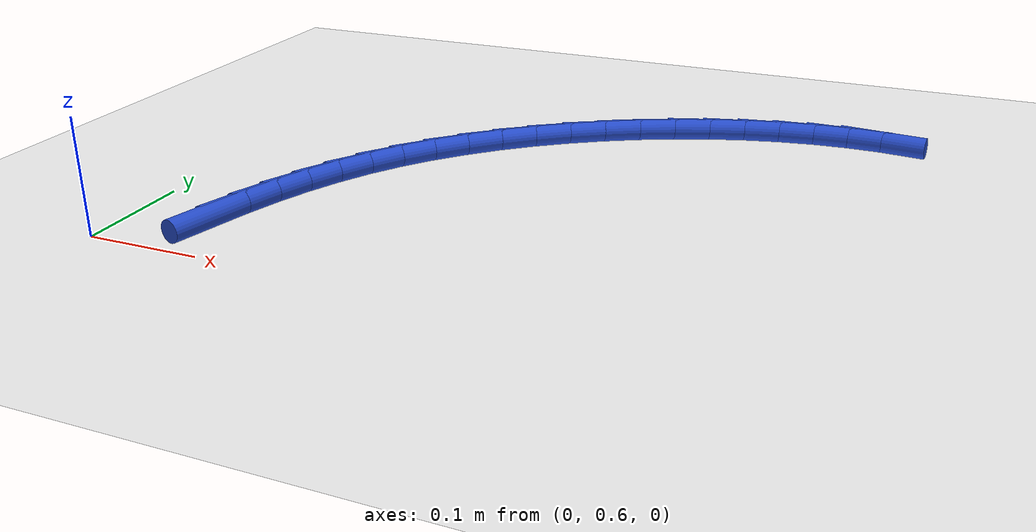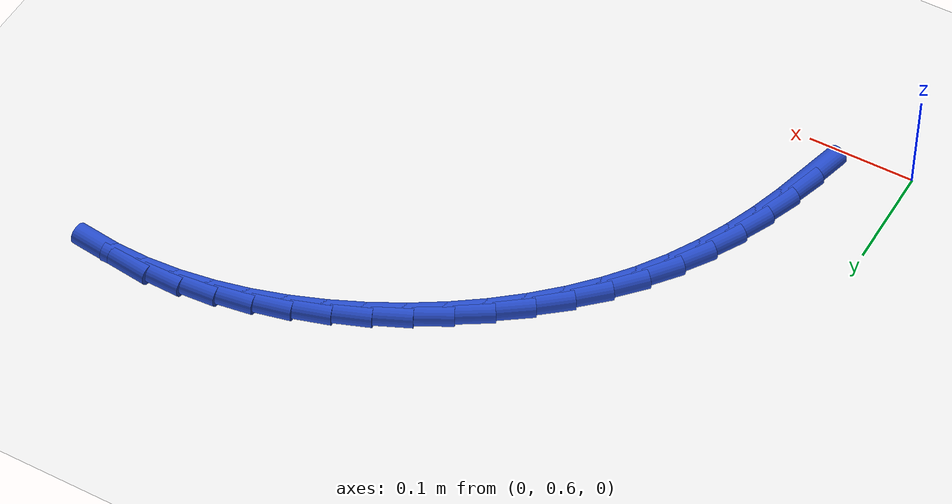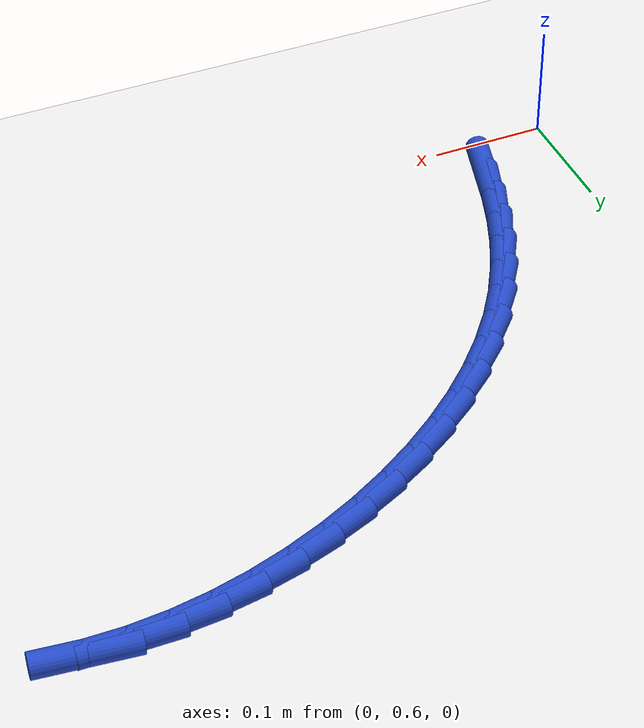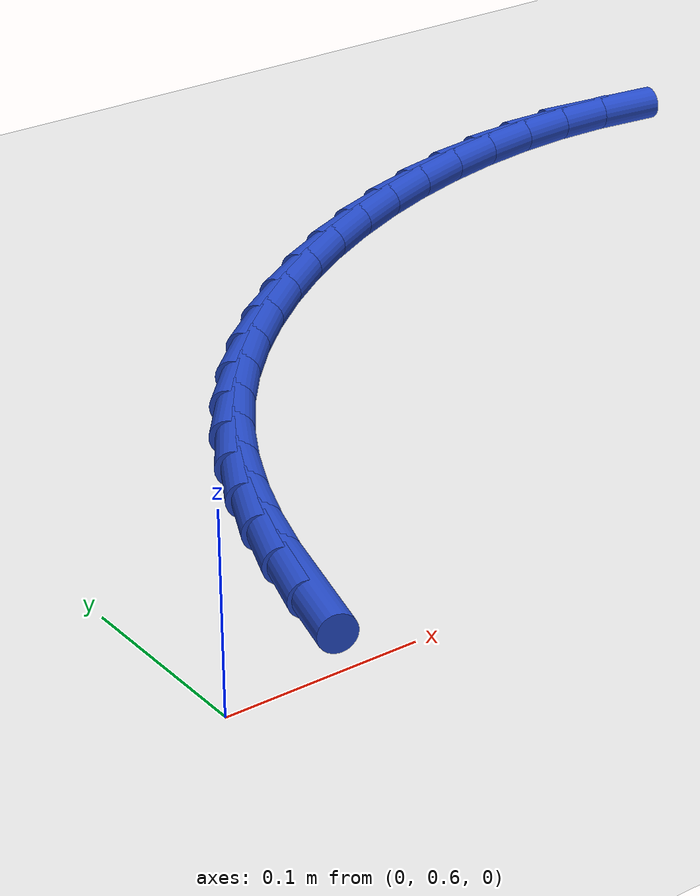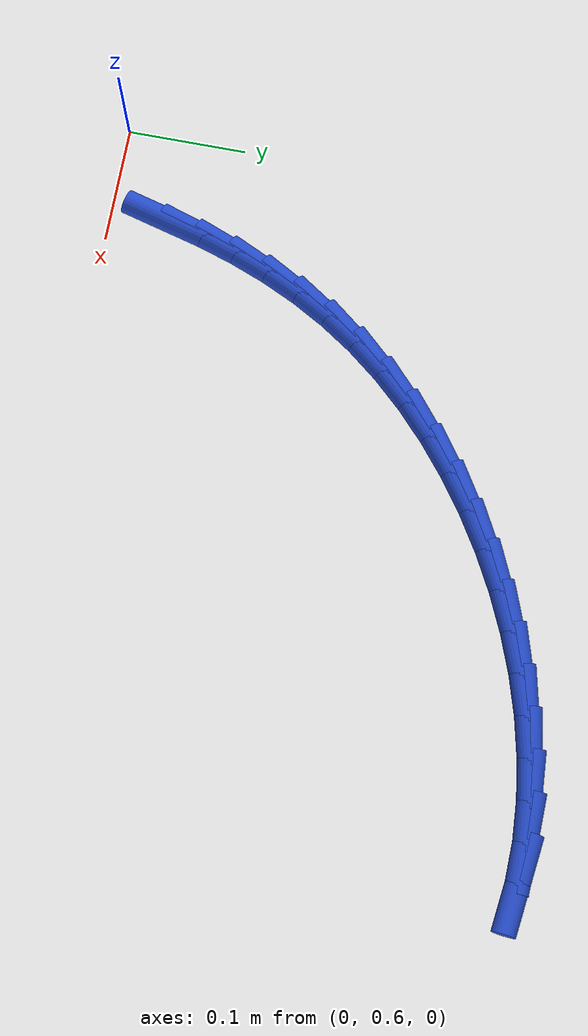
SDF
<sdf version="1.6">
 <world name="default">
  <model name="ground_plane">
   <static>1</static>
   <link name="link">
    <collision name="collision">
     <geometry><plane><normal>0 0 1</normal><size>100 100</size></plane></geometry>
     <surface><friction><ode><mu>100</mu><mu2>50</mu2></ode></friction></surface>
    </collision>
    <visual name="visual">
     <cast_shadows>0</cast_shadows>
     <geometry><plane><normal>0 0 1</normal><size>100 100</size></plane></geometry>
     <material>
      <script><uri>file://media/materials/scripts/gazebo.material</uri><name>Gazebo/WhiteGlow</name></script>
     </material>
    </visual>
   </link>
  </model>
  <model name="line">
   <link name="link_20">
    <pose>0.0774486583179196 0.6512273715249736 0.01 0 1.57 1.3091711000157784</pose>
    <collision name="collision">
     <geometry><cylinder><radius>0.01</radius><length>0.08</length></cylinder></geometry>
    </collision>
    <visual name="visual">
     <material>
      <script><name>Gazebo/Blue</name><uri>file://media/materials/scripts/gazebo.material</uri></script>
     </material>
     <geometry><cylinder><radius>0.01</radius><length>0.08</length></cylinder></geometry>
    </visual>
   </link>
   <link name="link_21">
    <pose>0.08573327645082796 0.682167540598323 0.01 0 1.57 1.255984119481212</pose>
    <collision name="collision">
     <geometry><cylinder><radius>0.01</radius><length>0.08</length></cylinder></geometry>
    </collision>
    <visual name="visual">
     <material>
      <script><name>Gazebo/Blue</name><uri>file://media/materials/scripts/gazebo.material</uri></script>
     </material>
     <geometry><cylinder><radius>0.01</radius><length>0.08</length></cylinder></geometry>
    </visual>
   </link>
   <link name="link_22">
    <pose>0.09558870302588487 0.7124321714394595 0.01 0 1.57 1.1959731708138204</pose>
    <collision name="collision">
     <geometry><cylinder><radius>0.01</radius><length>0.08</length></cylinder></geometry>
    </collision>
    <visual name="visual">
     <material>
      <script><name>Gazebo/Blue</name><uri>file://media/materials/scripts/gazebo.material</uri></script>
     </material>
     <geometry><cylinder><radius>0.01</radius><length>0.08</length></cylinder></geometry>
    </visual>
   </link>
   <link name="link_23">
    <pose>0.10719850851861909 0.7419419479513438 0.01 0 1.57 1.1294316204945463</pose>
    <collision name="collision">
     <geometry><cylinder><radius>0.01</radius><length>0.08</length></cylinder></geometry>
    </collision>
    <visual name="visual">
     <material>
      <script><name>Gazebo/Blue</name><uri>file://media/materials/scripts/gazebo.material</uri></script>
     </material>
     <geometry><cylinder><radius>0.01</radius><length>0.08</length></cylinder></geometry>
    </visual>
   </link>
   <link name="link_24">
    <pose>0.1207462634045594 0.7706175540369357 0.01 0 1.57 1.0569555777172843</pose>
    <collision name="collision">
     <geometry><cylinder><radius>0.01</radius><length>0.08</length></cylinder></geometry>
    </collision>
    <visual name="visual">
     <material>
      <script><name>Gazebo/Blue</name><uri>file://media/materials/scripts/gazebo.material</uri></script>
     </material>
     <geometry><cylinder><radius>0.01</radius><length>0.08</length></cylinder></geometry>
    </visual>
   </link>
   <link name="link_25">
    <pose>0.1364155381592344 0.7983796735991951 0.01 0 1.57 0.979486730409254</pose>
    <collision name="collision">
     <geometry><cylinder><radius>0.01</radius><length>0.08</length></cylinder></geometry>
    </collision>
    <visual name="visual">
     <material>
      <script><name>Gazebo/Blue</name><uri>file://media/materials/scripts/gazebo.material</uri></script>
     </material>
     <geometry><cylinder><radius>0.01</radius><length>0.08</length></cylinder></geometry>
    </visual>
   </link>
   <link name="link_26">
    <pose>0.15438990325817295 0.8251489905410829 0.01 0 1.57 0.8994100275130474</pose>
    <collision name="collision">
     <geometry><cylinder><radius>0.01</radius><length>0.08</length></cylinder></geometry>
    </collision>
    <visual name="visual">
     <material>
      <script><name>Gazebo/Blue</name><uri>file://media/materials/scripts/gazebo.material</uri></script>
     </material>
     <geometry><cylinder><radius>0.01</radius><length>0.08</length></cylinder></geometry>
    </visual>
   </link>
   <link name="link_27">
    <pose>0.17480095725403763 0.8508390065336188 0.01 0 1.57 0.823158644717444</pose>
    <collision name="collision">
     <geometry><cylinder><radius>0.01</radius><length>0.08</length></cylinder></geometry>
    </collision>
    <visual name="visual">
     <material>
      <script><name>Gazebo/Blue</name><uri>file://media/materials/scripts/gazebo.material</uri></script>
     </material>
     <geometry><cylinder><radius>0.01</radius><length>0.08</length></cylinder></geometry>
    </visual>
   </link>
   <link name="link_28">
    <pose>0.19750428889256885 0.8753250802209427 0.01 0 1.57 0.751697193000518</pose>
    <collision name="collision">
     <geometry><cylinder><radius>0.01</radius><length>0.08</length></cylinder></geometry>
    </collision>
    <visual name="visual">
     <material>
      <script><name>Gazebo/Blue</name><uri>file://media/materials/scripts/gazebo.material</uri></script>
     </material>
     <geometry><cylinder><radius>0.01</radius><length>0.08</length></cylinder></geometry>
    </visual>
   </link>
   <link name="link_29">
    <pose>0.2222642155685694 0.8984699570519189 0.01 0 1.57 0.683890236731315</pose>
    <collision name="collision">
     <geometry><cylinder><radius>0.01</radius><length>0.08</length></cylinder></geometry>
    </collision>
    <visual name="visual">
     <material>
      <script><name>Gazebo/Blue</name><uri>file://media/materials/scripts/gazebo.material</uri></script>
     </material>
     <geometry><cylinder><radius>0.01</radius><length>0.08</length></cylinder></geometry>
    </visual>
   </link>
   <link name="link_30">
    <pose>0.24884499663010615 0.9201363744536752 0.01 0 1.57 0.6186537151266341</pose>
    <collision name="collision">
     <geometry><cylinder><radius>0.01</radius><length>0.08</length></cylinder></geometry>
    </collision>
    <visual name="visual">
     <material>
      <script><name>Gazebo/Blue</name><uri>file://media/materials/scripts/gazebo.material</uri></script>
     </material>
     <geometry><cylinder><radius>0.01</radius><length>0.08</length></cylinder></geometry>
    </visual>
   </link>
   <link name="link_31">
    <pose>0.2770108914252454 0.9401870698533387 0.01 0 1.57 0.5549527693007458</pose>
    <collision name="collision">
     <geometry><cylinder><radius>0.01</radius><length>0.08</length></cylinder></geometry>
    </collision>
    <visual name="visual">
     <material>
      <script><name>Gazebo/Blue</name><uri>file://media/materials/scripts/gazebo.material</uri></script>
     </material>
     <geometry><cylinder><radius>0.01</radius><length>0.08</length></cylinder></geometry>
    </visual>
   </link>
   <link name="link_32">
    <pose>0.3065261593020542 0.9584847806780372 0.01 0 1.57 0.4917869587413772</pose>
    <collision name="collision">
     <geometry><cylinder><radius>0.01</radius><length>0.08</length></cylinder></geometry>
    </collision>
    <visual name="visual">
     <material>
      <script><name>Gazebo/Blue</name><uri>file://media/materials/scripts/gazebo.material</uri></script>
     </material>
     <geometry><cylinder><radius>0.01</radius><length>0.08</length></cylinder></geometry>
    </visual>
   </link>
   <link name="link_33">
    <pose>0.3371550596085989 0.9748922443548979 0.01 0 1.57 0.42817007842313104</pose>
    <collision name="collision">
     <geometry><cylinder><radius>0.01</radius><length>0.08</length></cylinder></geometry>
    </collision>
    <visual name="visual">
     <material>
      <script><name>Gazebo/Blue</name><uri>file://media/materials/scripts/gazebo.material</uri></script>
     </material>
     <geometry><cylinder><radius>0.01</radius><length>0.08</length></cylinder></geometry>
    </visual>
   </link>
   <link name="link_34">
    <pose>0.36866185169294596 0.9892721983110478 0.01 0 1.57 0.36310850138713446</pose>
    <collision name="collision">
     <geometry><cylinder><radius>0.01</radius><length>0.08</length></cylinder></geometry>
    </collision>
    <visual name="visual">
     <material>
      <script><name>Gazebo/Blue</name><uri>file://media/materials/scripts/gazebo.material</uri></script>
     </material>
     <geometry><cylinder><radius>0.01</radius><length>0.08</length></cylinder></geometry>
    </visual>
   </link>
   <link name="link_35">
    <pose>0.40081079490316235 1.0014873799736148 0.01 0 1.57 0.29558127397241796</pose>
    <collision name="collision">
     <geometry><cylinder><radius>0.01</radius><length>0.08</length></cylinder></geometry>
    </collision>
    <visual name="visual">
     <material>
      <script><name>Gazebo/Blue</name><uri>file://media/materials/scripts/gazebo.material</uri></script>
     </material>
     <geometry><cylinder><radius>0.01</radius><length>0.08</length></cylinder></geometry>
    </visual>
   </link>
   <link name="link_36">
    <pose>0.4333661485873144 1.0114005267697264 0.01 0 1.57 0.22452575499002786</pose>
    <collision name="collision">
     <geometry><cylinder><radius>0.01</radius><length>0.08</length></cylinder></geometry>
    </collision>
    <visual name="visual">
     <material>
      <script><name>Gazebo/Blue</name><uri>file://media/materials/scripts/gazebo.material</uri></script>
     </material>
     <geometry><cylinder><radius>0.01</radius><length>0.08</length></cylinder></geometry>
    </visual>
   </link>
   <link name="link_37">
    <pose>0.4660921720934691 1.0188743761265096 0.01 0 1.57 0.14883444449405683</pose>
    <collision name="collision">
     <geometry><cylinder><radius>0.01</radius><length>0.08</length></cylinder></geometry>
    </collision>
    <visual name="visual">
     <material>
      <script><name>Gazebo/Blue</name><uri>file://media/materials/scripts/gazebo.material</uri></script>
     </material>
     <geometry><cylinder><radius>0.01</radius><length>0.08</length></cylinder></geometry>
    </visual>
   </link>
   <link name="link_38">
    <pose>0.49875312476969247 1.023771665471092 0.01 0 1.57 0.06737183830236193</pose>
    <collision name="collision">
     <geometry><cylinder><radius>0.01</radius><length>0.08</length></cylinder></geometry>
    </collision>
    <visual name="visual">
     <material>
      <script><name>Gazebo/Blue</name><uri>file://media/materials/scripts/gazebo.material</uri></script>
     </material>
     <geometry><cylinder><radius>0.01</radius><length>0.08</length></cylinder></geometry>
    </visual>
   </link>
   <link name="link_39">
    <pose>0.5311132659640518 1.025955132230601 0.01 0 1.57 -0.020975650541623307</pose>
    <collision name="collision">
     <geometry><cylinder><radius>0.01</radius><length>0.08</length></cylinder></geometry>
    </collision>
    <visual name="visual">
     <material>
      <script><name>Gazebo/Blue</name><uri>file://media/materials/scripts/gazebo.material</uri></script>
     </material>
     <geometry><cylinder><radius>0.01</radius><length>0.08</length></cylinder></geometry>
    </visual>
   </link>
   <link name="link_40">
    <pose>0.5629368550246131 1.025287513832164 0.01 0 1.57 -0.11682227531001083</pose>
    <collision name="collision">
     <geometry><cylinder><radius>0.01</radius><length>0.08</length></cylinder></geometry>
    </collision>
    <visual name="visual">
     <material>
      <script><name>Gazebo/Blue</name><uri>file://media/materials/scripts/gazebo.material</uri></script>
     </material>
     <geometry><cylinder><radius>0.01</radius><length>0.08</length></cylinder></geometry>
    </visual>
   </link>
  </model>
 </world>
</sdf>
